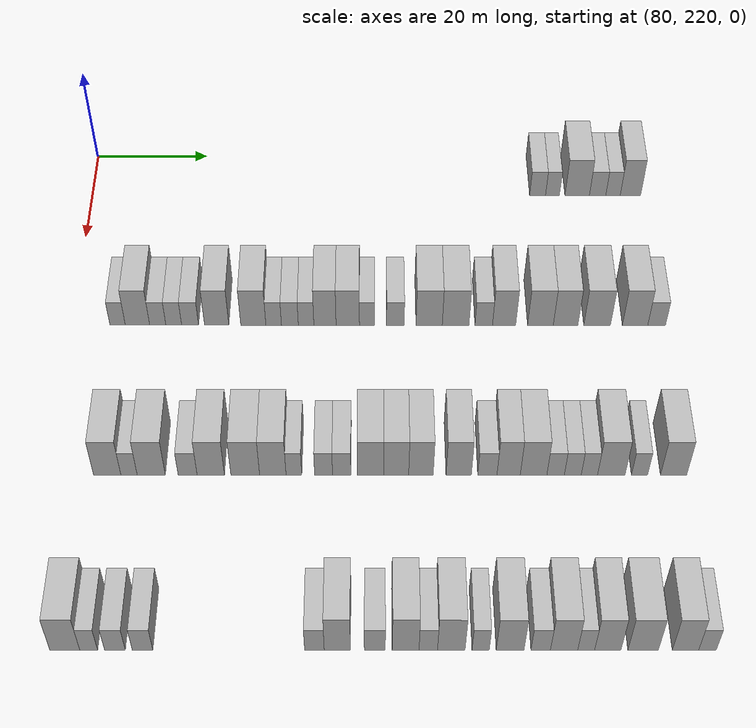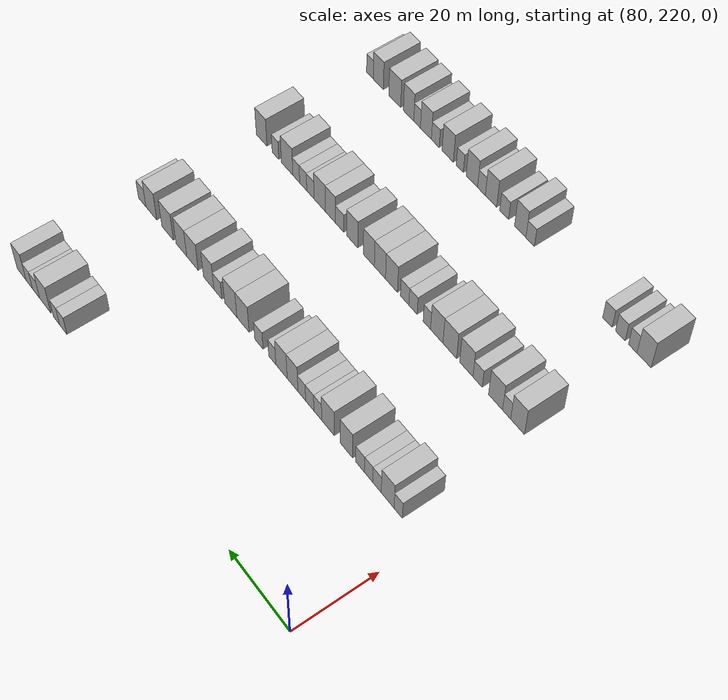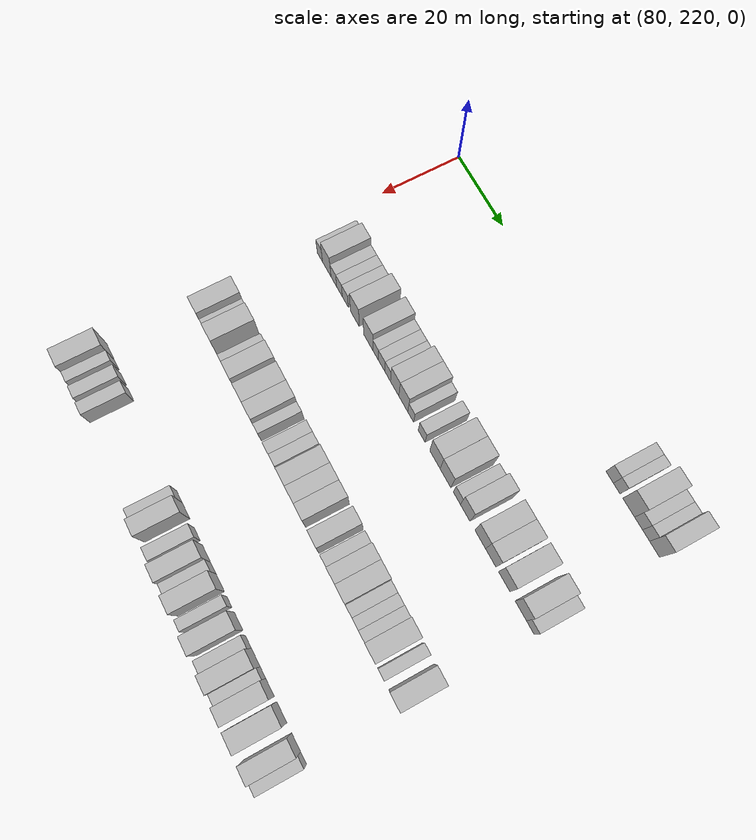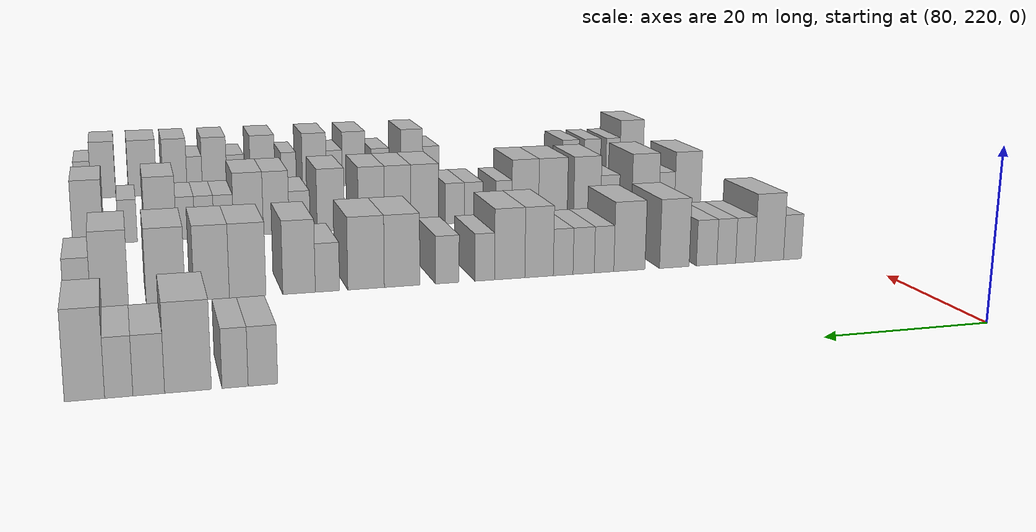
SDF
<sdf version="1.6">
 <world name="default">
  <model name="building_652">
   <static>1</static>
   <pose>85.0000 300.1938 0 0.000000 0.000000 0.000000</pose>
   <link name="link">
    <pose>0 0 3.00 0 0 0</pose>
    <collision name="collision"><geometry><box><size>10.0000 2.8580 6.0000</size></box></geometry></collision>
    <visual name="visual">
     <cast_shadows>0</cast_shadows>
     <geometry><box><size>10.0000 2.8580 6.0000</size></box></geometry>
     <material>
      <script>
       <uri>model://HANNAS_wall/materials/scripts</uri>
       <uri>model://HANNAS_wall/materials/textures</uri>
       <name>vrc/HANNAS_wall</name>
      </script>
     </material>
    </visual>
   </link>
  </model>
  <model name="building_653">
   <static>1</static>
   <pose>85.0000 302.8730 0 0.000000 0.000000 0.000000</pose>
   <link name="link">
    <pose>0 0 3.00 0 0 0</pose>
    <collision name="collision"><geometry><box><size>10.0000 2.5004 6.0000</size></box></geometry></collision>
    <visual name="visual">
     <cast_shadows>0</cast_shadows>
     <geometry><box><size>10.0000 2.5004 6.0000</size></box></geometry>
     <material>
      <script>
       <uri>model://HANNAS_wall/materials/scripts</uri>
       <uri>model://HANNAS_wall/materials/textures</uri>
       <name>vrc/HANNAS_wall</name>
      </script>
     </material>
    </visual>
   </link>
  </model>
  <model name="building_654">
   <static>1</static>
   <pose>85.0000 307.3267 0 0.000000 0.000000 0.000000</pose>
   <link name="link">
    <pose>0 0 4.50 0 0 0</pose>
    <collision name="collision"><geometry><box><size>10.0000 4.4071 9.0000</size></box></geometry></collision>
    <visual name="visual">
     <cast_shadows>0</cast_shadows>
     <geometry><box><size>10.0000 4.4071 9.0000</size></box></geometry>
     <material>
      <script>
       <uri>model://HANNAS_wall/materials/scripts</uri>
       <uri>model://HANNAS_wall/materials/textures</uri>
       <name>vrc/HANNAS_wall</name>
      </script>
     </material>
    </visual>
   </link>
  </model>
  <model name="building_655">
   <static>1</static>
   <pose>85.0000 311.0030 0 0.000000 0.000000 0.000000</pose>
   <link name="link">
    <pose>0 0 3.00 0 0 0</pose>
    <collision name="collision"><geometry><box><size>10.0000 2.9454 6.0000</size></box></geometry></collision>
    <visual name="visual">
     <cast_shadows>0</cast_shadows>
     <geometry><box><size>10.0000 2.9454 6.0000</size></box></geometry>
     <material>
      <script>
       <uri>model://HANNAS_wall/materials/scripts</uri>
       <uri>model://HANNAS_wall/materials/textures</uri>
       <name>vrc/HANNAS_wall</name>
      </script>
     </material>
    </visual>
   </link>
  </model>
  <model name="building_656">
   <static>1</static>
   <pose>85.0000 313.7740 0 0.000000 0.000000 0.000000</pose>
   <link name="link">
    <pose>0 0 3.00 0 0 0</pose>
    <collision name="collision"><geometry><box><size>10.0000 2.5968 6.0000</size></box></geometry></collision>
    <visual name="visual">
     <cast_shadows>0</cast_shadows>
     <geometry><box><size>10.0000 2.5968 6.0000</size></box></geometry>
     <material>
      <script>
       <uri>model://HANNAS_wall/materials/scripts</uri>
       <uri>model://HANNAS_wall/materials/textures</uri>
       <name>vrc/HANNAS_wall</name>
      </script>
     </material>
    </visual>
   </link>
  </model>
  <model name="building_657">
   <static>1</static>
   <pose>85.0000 316.9069 0 0.000000 0.000000 0.000000</pose>
   <link name="link">
    <pose>0 0 4.50 0 0 0</pose>
    <collision name="collision"><geometry><box><size>10.0000 3.6690 9.0000</size></box></geometry></collision>
    <visual name="visual">
     <cast_shadows>0</cast_shadows>
     <geometry><box><size>10.0000 3.6690 9.0000</size></box></geometry>
     <material>
      <script>
       <uri>model://HANNAS_wall/materials/scripts</uri>
       <uri>model://HANNAS_wall/materials/textures</uri>
       <name>vrc/HANNAS_wall</name>
      </script>
     </material>
    </visual>
   </link>
  </model>
  <model name="building_866">
   <static>1</static>
   <pose>115.0000 227.6310 0 0.000000 0.000000 0.000000</pose>
   <link name="link">
    <pose>0 0 3.00 0 0 0</pose>
    <collision name="collision"><geometry><box><size>10.0000 2.5804 6.0000</size></box></geometry></collision>
    <visual name="visual">
     <cast_shadows>0</cast_shadows>
     <geometry><box><size>10.0000 2.5804 6.0000</size></box></geometry>
     <material>
      <script>
       <uri>model://HANNAS_wall/materials/scripts</uri>
       <uri>model://HANNAS_wall/materials/textures</uri>
       <name>vrc/HANNAS_wall</name>
      </script>
     </material>
    </visual>
   </link>
  </model>
  <model name="building_867">
   <static>1</static>
   <pose>115.0000 230.9686 0 0.000000 0.000000 0.000000</pose>
   <link name="link">
    <pose>0 0 4.50 0 0 0</pose>
    <collision name="collision"><geometry><box><size>10.0000 4.0950 9.0000</size></box></geometry></collision>
    <visual name="visual">
     <cast_shadows>0</cast_shadows>
     <geometry><box><size>10.0000 4.0950 9.0000</size></box></geometry>
     <material>
      <script>
       <uri>model://HANNAS_wall/materials/scripts</uri>
       <uri>model://HANNAS_wall/materials/textures</uri>
       <name>vrc/HANNAS_wall</name>
      </script>
     </material>
    </visual>
   </link>
  </model>
  <model name="building_868">
   <static>1</static>
   <pose>115.0000 234.3747 0 0.000000 0.000000 0.000000</pose>
   <link name="link">
    <pose>0 0 3.00 0 0 0</pose>
    <collision name="collision"><geometry><box><size>10.0000 2.7172 6.0000</size></box></geometry></collision>
    <visual name="visual">
     <cast_shadows>0</cast_shadows>
     <geometry><box><size>10.0000 2.7172 6.0000</size></box></geometry>
     <material>
      <script>
       <uri>model://HANNAS_wall/materials/scripts</uri>
       <uri>model://HANNAS_wall/materials/textures</uri>
       <name>vrc/HANNAS_wall</name>
      </script>
     </material>
    </visual>
   </link>
  </model>
  <model name="building_869">
   <static>1</static>
   <pose>115.0000 237.0577 0 0.000000 0.000000 0.000000</pose>
   <link name="link">
    <pose>0 0 3.00 0 0 0</pose>
    <collision name="collision"><geometry><box><size>10.0000 2.6487 6.0000</size></box></geometry></collision>
    <visual name="visual">
     <cast_shadows>0</cast_shadows>
     <geometry><box><size>10.0000 2.6487 6.0000</size></box></geometry>
     <material>
      <script>
       <uri>model://HANNAS_wall/materials/scripts</uri>
       <uri>model://HANNAS_wall/materials/textures</uri>
       <name>vrc/HANNAS_wall</name>
      </script>
     </material>
    </visual>
   </link>
  </model>
  <model name="building_870">
   <static>1</static>
   <pose>115.0000 239.8063 0 0.000000 0.000000 0.000000</pose>
   <link name="link">
    <pose>0 0 3.00 0 0 0</pose>
    <collision name="collision"><geometry><box><size>10.0000 2.8484 6.0000</size></box></geometry></collision>
    <visual name="visual">
     <cast_shadows>0</cast_shadows>
     <geometry><box><size>10.0000 2.8484 6.0000</size></box></geometry>
     <material>
      <script>
       <uri>model://HANNAS_wall/materials/scripts</uri>
       <uri>model://HANNAS_wall/materials/textures</uri>
       <name>vrc/HANNAS_wall</name>
      </script>
     </material>
    </visual>
   </link>
  </model>
  <model name="building_871">
   <static>1</static>
   <pose>115.0000 244.2716 0 0.000000 0.000000 0.000000</pose>
   <link name="link">
    <pose>0 0 4.50 0 0 0</pose>
    <collision name="collision"><geometry><box><size>10.0000 4.0822 9.0000</size></box></geometry></collision>
    <visual name="visual">
     <cast_shadows>0</cast_shadows>
     <geometry><box><size>10.0000 4.0822 9.0000</size></box></geometry>
     <material>
      <script>
       <uri>model://HANNAS_wall/materials/scripts</uri>
       <uri>model://HANNAS_wall/materials/textures</uri>
       <name>vrc/HANNAS_wall</name>
      </script>
     </material>
    </visual>
   </link>
  </model>
  <model name="building_872">
   <static>1</static>
   <pose>115.0000 250.4192 0 0.000000 0.000000 0.000000</pose>
   <link name="link">
    <pose>0 0 4.50 0 0 0</pose>
    <collision name="collision"><geometry><box><size>10.0000 4.2129 9.0000</size></box></geometry></collision>
    <visual name="visual">
     <cast_shadows>0</cast_shadows>
     <geometry><box><size>10.0000 4.2129 9.0000</size></box></geometry>
     <material>
      <script>
       <uri>model://HANNAS_wall/materials/scripts</uri>
       <uri>model://HANNAS_wall/materials/textures</uri>
       <name>vrc/HANNAS_wall</name>
      </script>
     </material>
    </visual>
   </link>
  </model>
  <model name="building_873">
   <static>1</static>
   <pose>115.0000 253.8337 0 0.000000 0.000000 0.000000</pose>
   <link name="link">
    <pose>0 0 3.00 0 0 0</pose>
    <collision name="collision"><geometry><box><size>10.0000 2.6162 6.0000</size></box></geometry></collision>
    <visual name="visual">
     <cast_shadows>0</cast_shadows>
     <geometry><box><size>10.0000 2.6162 6.0000</size></box></geometry>
     <material>
      <script>
       <uri>model://HANNAS_wall/materials/scripts</uri>
       <uri>model://HANNAS_wall/materials/textures</uri>
       <name>vrc/HANNAS_wall</name>
      </script>
     </material>
    </visual>
   </link>
  </model>
  <model name="building_874">
   <static>1</static>
   <pose>115.0000 256.5579 0 0.000000 0.000000 0.000000</pose>
   <link name="link">
    <pose>0 0 3.00 0 0 0</pose>
    <collision name="collision"><geometry><box><size>10.0000 2.8321 6.0000</size></box></geometry></collision>
    <visual name="visual">
     <cast_shadows>0</cast_shadows>
     <geometry><box><size>10.0000 2.8321 6.0000</size></box></geometry>
     <material>
      <script>
       <uri>model://HANNAS_wall/materials/scripts</uri>
       <uri>model://HANNAS_wall/materials/textures</uri>
       <name>vrc/HANNAS_wall</name>
      </script>
     </material>
    </visual>
   </link>
  </model>
  <model name="building_875">
   <static>1</static>
   <pose>115.0000 259.2789 0 0.000000 0.000000 0.000000</pose>
   <link name="link">
    <pose>0 0 3.00 0 0 0</pose>
    <collision name="collision"><geometry><box><size>10.0000 2.6101 6.0000</size></box></geometry></collision>
    <visual name="visual">
     <cast_shadows>0</cast_shadows>
     <geometry><box><size>10.0000 2.6101 6.0000</size></box></geometry>
     <material>
      <script>
       <uri>model://HANNAS_wall/materials/scripts</uri>
       <uri>model://HANNAS_wall/materials/textures</uri>
       <name>vrc/HANNAS_wall</name>
      </script>
     </material>
    </visual>
   </link>
  </model>
  <model name="building_876">
   <static>1</static>
   <pose>115.0000 262.4476 0 0.000000 0.000000 0.000000</pose>
   <link name="link">
    <pose>0 0 4.50 0 0 0</pose>
    <collision name="collision"><geometry><box><size>10.0000 3.7273 9.0000</size></box></geometry></collision>
    <visual name="visual">
     <cast_shadows>0</cast_shadows>
     <geometry><box><size>10.0000 3.7273 9.0000</size></box></geometry>
     <material>
      <script>
       <uri>model://HANNAS_wall/materials/scripts</uri>
       <uri>model://HANNAS_wall/materials/textures</uri>
       <name>vrc/HANNAS_wall</name>
      </script>
     </material>
    </visual>
   </link>
  </model>
  <model name="building_877">
   <static>1</static>
   <pose>115.0000 266.2742 0 0.000000 0.000000 0.000000</pose>
   <link name="link">
    <pose>0 0 4.50 0 0 0</pose>
    <collision name="collision"><geometry><box><size>10.0000 3.9258 9.0000</size></box></geometry></collision>
    <visual name="visual">
     <cast_shadows>0</cast_shadows>
     <geometry><box><size>10.0000 3.9258 9.0000</size></box></geometry>
     <material>
      <script>
       <uri>model://HANNAS_wall/materials/scripts</uri>
       <uri>model://HANNAS_wall/materials/textures</uri>
       <name>vrc/HANNAS_wall</name>
      </script>
     </material>
    </visual>
   </link>
  </model>
  <model name="building_878">
   <static>1</static>
   <pose>115.0000 269.5037 0 0.000000 0.000000 0.000000</pose>
   <link name="link">
    <pose>0 0 3.00 0 0 0</pose>
    <collision name="collision"><geometry><box><size>10.0000 2.5332 6.0000</size></box></geometry></collision>
    <visual name="visual">
     <cast_shadows>0</cast_shadows>
     <geometry><box><size>10.0000 2.5332 6.0000</size></box></geometry>
     <material>
      <script>
       <uri>model://HANNAS_wall/materials/scripts</uri>
       <uri>model://HANNAS_wall/materials/textures</uri>
       <name>vrc/HANNAS_wall</name>
      </script>
     </material>
    </visual>
   </link>
  </model>
  <model name="building_879">
   <static>1</static>
   <pose>115.0000 274.2524 0 0.000000 0.000000 0.000000</pose>
   <link name="link">
    <pose>0 0 3.00 0 0 0</pose>
    <collision name="collision"><geometry><box><size>10.0000 2.9642 6.0000</size></box></geometry></collision>
    <visual name="visual">
     <cast_shadows>0</cast_shadows>
     <geometry><box><size>10.0000 2.9642 6.0000</size></box></geometry>
     <material>
      <script>
       <uri>model://HANNAS_wall/materials/scripts</uri>
       <uri>model://HANNAS_wall/materials/textures</uri>
       <name>vrc/HANNAS_wall</name>
      </script>
     </material>
    </visual>
   </link>
  </model>
  <model name="building_880">
   <static>1</static>
   <pose>115.0000 279.9411 0 0.000000 0.000000 0.000000</pose>
   <link name="link">
    <pose>0 0 4.50 0 0 0</pose>
    <collision name="collision"><geometry><box><size>10.0000 4.4133 9.0000</size></box></geometry></collision>
    <visual name="visual">
     <cast_shadows>0</cast_shadows>
     <geometry><box><size>10.0000 4.4133 9.0000</size></box></geometry>
     <material>
      <script>
       <uri>model://HANNAS_wall/materials/scripts</uri>
       <uri>model://HANNAS_wall/materials/textures</uri>
       <name>vrc/HANNAS_wall</name>
      </script>
     </material>
    </visual>
   </link>
  </model>
  <model name="building_881">
   <static>1</static>
   <pose>115.0000 284.3922 0 0.000000 0.000000 0.000000</pose>
   <link name="link">
    <pose>0 0 4.50 0 0 0</pose>
    <collision name="collision"><geometry><box><size>10.0000 4.4887 9.0000</size></box></geometry></collision>
    <visual name="visual">
     <cast_shadows>0</cast_shadows>
     <geometry><box><size>10.0000 4.4887 9.0000</size></box></geometry>
     <material>
      <script>
       <uri>model://HANNAS_wall/materials/scripts</uri>
       <uri>model://HANNAS_wall/materials/textures</uri>
       <name>vrc/HANNAS_wall</name>
      </script>
     </material>
    </visual>
   </link>
  </model>
  <model name="building_882">
   <static>1</static>
   <pose>115.0000 289.1096 0 0.000000 0.000000 0.000000</pose>
   <link name="link">
    <pose>0 0 3.00 0 0 0</pose>
    <collision name="collision"><geometry><box><size>10.0000 2.9461 6.0000</size></box></geometry></collision>
    <visual name="visual">
     <cast_shadows>0</cast_shadows>
     <geometry><box><size>10.0000 2.9461 6.0000</size></box></geometry>
     <material>
      <script>
       <uri>model://HANNAS_wall/materials/scripts</uri>
       <uri>model://HANNAS_wall/materials/textures</uri>
       <name>vrc/HANNAS_wall</name>
      </script>
     </material>
    </visual>
   </link>
  </model>
  <model name="building_883">
   <static>1</static>
   <pose>115.0000 292.5305 0 0.000000 0.000000 0.000000</pose>
   <link name="link">
    <pose>0 0 4.50 0 0 0</pose>
    <collision name="collision"><geometry><box><size>10.0000 3.8957 9.0000</size></box></geometry></collision>
    <visual name="visual">
     <cast_shadows>0</cast_shadows>
     <geometry><box><size>10.0000 3.8957 9.0000</size></box></geometry>
     <material>
      <script>
       <uri>model://HANNAS_wall/materials/scripts</uri>
       <uri>model://HANNAS_wall/materials/textures</uri>
       <name>vrc/HANNAS_wall</name>
      </script>
     </material>
    </visual>
   </link>
  </model>
  <model name="building_884">
   <static>1</static>
   <pose>115.0000 298.6358 0 0.000000 0.000000 0.000000</pose>
   <link name="link">
    <pose>0 0 4.50 0 0 0</pose>
    <collision name="collision"><geometry><box><size>10.0000 4.3149 9.0000</size></box></geometry></collision>
    <visual name="visual">
     <cast_shadows>0</cast_shadows>
     <geometry><box><size>10.0000 4.3149 9.0000</size></box></geometry>
     <material>
      <script>
       <uri>model://HANNAS_wall/materials/scripts</uri>
       <uri>model://HANNAS_wall/materials/textures</uri>
       <name>vrc/HANNAS_wall</name>
      </script>
     </material>
    </visual>
   </link>
  </model>
  <model name="building_885">
   <static>1</static>
   <pose>115.0000 302.8550 0 0.000000 0.000000 0.000000</pose>
   <link name="link">
    <pose>0 0 4.50 0 0 0</pose>
    <collision name="collision"><geometry><box><size>10.0000 4.1236 9.0000</size></box></geometry></collision>
    <visual name="visual">
     <cast_shadows>0</cast_shadows>
     <geometry><box><size>10.0000 4.1236 9.0000</size></box></geometry>
     <material>
      <script>
       <uri>model://HANNAS_wall/materials/scripts</uri>
       <uri>model://HANNAS_wall/materials/textures</uri>
       <name>vrc/HANNAS_wall</name>
      </script>
     </material>
    </visual>
   </link>
  </model>
  <model name="building_886">
   <static>1</static>
   <pose>115.0000 308.1585 0 0.000000 0.000000 0.000000</pose>
   <link name="link">
    <pose>0 0 4.50 0 0 0</pose>
    <collision name="collision"><geometry><box><size>10.0000 4.4835 9.0000</size></box></geometry></collision>
    <visual name="visual">
     <cast_shadows>0</cast_shadows>
     <geometry><box><size>10.0000 4.4835 9.0000</size></box></geometry>
     <material>
      <script>
       <uri>model://HANNAS_wall/materials/scripts</uri>
       <uri>model://HANNAS_wall/materials/textures</uri>
       <name>vrc/HANNAS_wall</name>
      </script>
     </material>
    </visual>
   </link>
  </model>
  <model name="building_887">
   <static>1</static>
   <pose>115.0000 314.5301 0 0.000000 0.000000 0.000000</pose>
   <link name="link">
    <pose>0 0 4.50 0 0 0</pose>
    <collision name="collision"><geometry><box><size>10.0000 4.2599 9.0000</size></box></geometry></collision>
    <visual name="visual">
     <cast_shadows>0</cast_shadows>
     <geometry><box><size>10.0000 4.2599 9.0000</size></box></geometry>
     <material>
      <script>
       <uri>model://HANNAS_wall/materials/scripts</uri>
       <uri>model://HANNAS_wall/materials/textures</uri>
       <name>vrc/HANNAS_wall</name>
      </script>
     </material>
    </visual>
   </link>
  </model>
  <model name="building_888">
   <static>1</static>
   <pose>115.0000 318.1547 0 0.000000 0.000000 0.000000</pose>
   <link name="link">
    <pose>0 0 3.00 0 0 0</pose>
    <collision name="collision"><geometry><box><size>10.0000 2.9892 6.0000</size></box></geometry></collision>
    <visual name="visual">
     <cast_shadows>0</cast_shadows>
     <geometry><box><size>10.0000 2.9892 6.0000</size></box></geometry>
     <material>
      <script>
       <uri>model://HANNAS_wall/materials/scripts</uri>
       <uri>model://HANNAS_wall/materials/textures</uri>
       <name>vrc/HANNAS_wall</name>
      </script>
     </material>
    </visual>
   </link>
  </model>
  <model name="building_1079">
   <static>1</static>
   <pose>145.0000 229.0703 0 0.000000 0.000000 0.000000</pose>
   <link name="link">
    <pose>0 0 4.50 0 0 0</pose>
    <collision name="collision"><geometry><box><size>10.0000 4.2565 9.0000</size></box></geometry></collision>
    <visual name="visual">
     <cast_shadows>0</cast_shadows>
     <geometry><box><size>10.0000 4.2565 9.0000</size></box></geometry>
     <material>
      <script>
       <uri>model://HANNAS_wall/materials/scripts</uri>
       <uri>model://HANNAS_wall/materials/textures</uri>
       <name>vrc/HANNAS_wall</name>
      </script>
     </material>
    </visual>
   </link>
  </model>
  <model name="building_1080">
   <static>1</static>
   <pose>145.0000 232.4685 0 0.000000 0.000000 0.000000</pose>
   <link name="link">
    <pose>0 0 3.00 0 0 0</pose>
    <collision name="collision"><geometry><box><size>10.0000 2.5397 6.0000</size></box></geometry></collision>
    <visual name="visual">
     <cast_shadows>0</cast_shadows>
     <geometry><box><size>10.0000 2.5397 6.0000</size></box></geometry>
     <material>
      <script>
       <uri>model://HANNAS_wall/materials/scripts</uri>
       <uri>model://HANNAS_wall/materials/textures</uri>
       <name>vrc/HANNAS_wall</name>
      </script>
     </material>
    </visual>
   </link>
  </model>
  <model name="building_1081">
   <static>1</static>
   <pose>145.0000 235.9318 0 0.000000 0.000000 0.000000</pose>
   <link name="link">
    <pose>0 0 4.50 0 0 0</pose>
    <collision name="collision"><geometry><box><size>10.0000 4.3870 9.0000</size></box></geometry></collision>
    <visual name="visual">
     <cast_shadows>0</cast_shadows>
     <geometry><box><size>10.0000 4.3870 9.0000</size></box></geometry>
     <material>
      <script>
       <uri>model://HANNAS_wall/materials/scripts</uri>
       <uri>model://HANNAS_wall/materials/textures</uri>
       <name>vrc/HANNAS_wall</name>
      </script>
     </material>
    </visual>
   </link>
  </model>
  <model name="building_1082">
   <static>1</static>
   <pose>145.0000 241.6033 0 0.000000 0.000000 0.000000</pose>
   <link name="link">
    <pose>0 0 3.00 0 0 0</pose>
    <collision name="collision"><geometry><box><size>10.0000 2.9559 6.0000</size></box></geometry></collision>
    <visual name="visual">
     <cast_shadows>0</cast_shadows>
     <geometry><box><size>10.0000 2.9559 6.0000</size></box></geometry>
     <material>
      <script>
       <uri>model://HANNAS_wall/materials/scripts</uri>
       <uri>model://HANNAS_wall/materials/textures</uri>
       <name>vrc/HANNAS_wall</name>
      </script>
     </material>
    </visual>
   </link>
  </model>
  <model name="building_1083">
   <static>1</static>
   <pose>145.0000 245.2110 0 0.000000 0.000000 0.000000</pose>
   <link name="link">
    <pose>0 0 4.50 0 0 0</pose>
    <collision name="collision"><geometry><box><size>10.0000 4.2596 9.0000</size></box></geometry></collision>
    <visual name="visual">
     <cast_shadows>0</cast_shadows>
     <geometry><box><size>10.0000 4.2596 9.0000</size></box></geometry>
     <material>
      <script>
       <uri>model://HANNAS_wall/materials/scripts</uri>
       <uri>model://HANNAS_wall/materials/textures</uri>
       <name>vrc/HANNAS_wall</name>
      </script>
     </material>
    </visual>
   </link>
  </model>
  <model name="building_1084">
   <static>1</static>
   <pose>145.0000 250.5799 0 0.000000 0.000000 0.000000</pose>
   <link name="link">
    <pose>0 0 4.50 0 0 0</pose>
    <collision name="collision"><geometry><box><size>10.0000 4.4782 9.0000</size></box></geometry></collision>
    <visual name="visual">
     <cast_shadows>0</cast_shadows>
     <geometry><box><size>10.0000 4.4782 9.0000</size></box></geometry>
     <material>
      <script>
       <uri>model://HANNAS_wall/materials/scripts</uri>
       <uri>model://HANNAS_wall/materials/textures</uri>
       <name>vrc/HANNAS_wall</name>
      </script>
     </material>
    </visual>
   </link>
  </model>
  <model name="building_1085">
   <static>1</static>
   <pose>145.0000 254.8781 0 0.000000 0.000000 0.000000</pose>
   <link name="link">
    <pose>0 0 4.50 0 0 0</pose>
    <collision name="collision"><geometry><box><size>10.0000 4.1180 9.0000</size></box></geometry></collision>
    <visual name="visual">
     <cast_shadows>0</cast_shadows>
     <geometry><box><size>10.0000 4.1180 9.0000</size></box></geometry>
     <material>
      <script>
       <uri>model://HANNAS_wall/materials/scripts</uri>
       <uri>model://HANNAS_wall/materials/textures</uri>
       <name>vrc/HANNAS_wall</name>
      </script>
     </material>
    </visual>
   </link>
  </model>
  <model name="building_1086">
   <static>1</static>
   <pose>145.0000 258.1617 0 0.000000 0.000000 0.000000</pose>
   <link name="link">
    <pose>0 0 3.00 0 0 0</pose>
    <collision name="collision"><geometry><box><size>10.0000 2.4492 6.0000</size></box></geometry></collision>
    <visual name="visual">
     <cast_shadows>0</cast_shadows>
     <geometry><box><size>10.0000 2.4492 6.0000</size></box></geometry>
     <material>
      <script>
       <uri>model://HANNAS_wall/materials/scripts</uri>
       <uri>model://HANNAS_wall/materials/textures</uri>
       <name>vrc/HANNAS_wall</name>
      </script>
     </material>
    </visual>
   </link>
  </model>
  <model name="building_1087">
   <static>1</static>
   <pose>145.0000 262.7789 0 0.000000 0.000000 0.000000</pose>
   <link name="link">
    <pose>0 0 3.00 0 0 0</pose>
    <collision name="collision"><geometry><box><size>10.0000 2.7853 6.0000</size></box></geometry></collision>
    <visual name="visual">
     <cast_shadows>0</cast_shadows>
     <geometry><box><size>10.0000 2.7853 6.0000</size></box></geometry>
     <material>
      <script>
       <uri>model://HANNAS_wall/materials/scripts</uri>
       <uri>model://HANNAS_wall/materials/textures</uri>
       <name>vrc/HANNAS_wall</name>
      </script>
     </material>
    </visual>
   </link>
  </model>
  <model name="building_1088">
   <static>1</static>
   <pose>145.0000 265.6045 0 0.000000 0.000000 0.000000</pose>
   <link name="link">
    <pose>0 0 3.00 0 0 0</pose>
    <collision name="collision"><geometry><box><size>10.0000 2.8658 6.0000</size></box></geometry></collision>
    <visual name="visual">
     <cast_shadows>0</cast_shadows>
     <geometry><box><size>10.0000 2.8658 6.0000</size></box></geometry>
     <material>
      <script>
       <uri>model://HANNAS_wall/materials/scripts</uri>
       <uri>model://HANNAS_wall/materials/textures</uri>
       <name>vrc/HANNAS_wall</name>
      </script>
     </material>
    </visual>
   </link>
  </model>
  <model name="building_1089">
   <static>1</static>
   <pose>145.0000 270.0914 0 0.000000 0.000000 0.000000</pose>
   <link name="link">
    <pose>0 0 4.50 0 0 0</pose>
    <collision name="collision"><geometry><box><size>10.0000 4.1080 9.0000</size></box></geometry></collision>
    <visual name="visual">
     <cast_shadows>0</cast_shadows>
     <geometry><box><size>10.0000 4.1080 9.0000</size></box></geometry>
     <material>
      <script>
       <uri>model://HANNAS_wall/materials/scripts</uri>
       <uri>model://HANNAS_wall/materials/textures</uri>
       <name>vrc/HANNAS_wall</name>
      </script>
     </material>
    </visual>
   </link>
  </model>
  <model name="building_1090">
   <static>1</static>
   <pose>145.0000 274.0895 0 0.000000 0.000000 0.000000</pose>
   <link name="link">
    <pose>0 0 4.50 0 0 0</pose>
    <collision name="collision"><geometry><box><size>10.0000 3.8882 9.0000</size></box></geometry></collision>
    <visual name="visual">
     <cast_shadows>0</cast_shadows>
     <geometry><box><size>10.0000 3.8882 9.0000</size></box></geometry>
     <material>
      <script>
       <uri>model://HANNAS_wall/materials/scripts</uri>
       <uri>model://HANNAS_wall/materials/textures</uri>
       <name>vrc/HANNAS_wall</name>
      </script>
     </material>
    </visual>
   </link>
  </model>
  <model name="building_1091">
   <static>1</static>
   <pose>145.0000 277.9465 0 0.000000 0.000000 0.000000</pose>
   <link name="link">
    <pose>0 0 4.50 0 0 0</pose>
    <collision name="collision"><geometry><box><size>10.0000 3.8258 9.0000</size></box></geometry></collision>
    <visual name="visual">
     <cast_shadows>0</cast_shadows>
     <geometry><box><size>10.0000 3.8258 9.0000</size></box></geometry>
     <material>
      <script>
       <uri>model://HANNAS_wall/materials/scripts</uri>
       <uri>model://HANNAS_wall/materials/textures</uri>
       <name>vrc/HANNAS_wall</name>
      </script>
     </material>
    </visual>
   </link>
  </model>
  <model name="building_1092">
   <static>1</static>
   <pose>145.0000 283.8302 0 0.000000 0.000000 0.000000</pose>
   <link name="link">
    <pose>0 0 4.50 0 0 0</pose>
    <collision name="collision"><geometry><box><size>10.0000 3.9417 9.0000</size></box></geometry></collision>
    <visual name="visual">
     <cast_shadows>0</cast_shadows>
     <geometry><box><size>10.0000 3.9417 9.0000</size></box></geometry>
     <material>
      <script>
       <uri>model://HANNAS_wall/materials/scripts</uri>
       <uri>model://HANNAS_wall/materials/textures</uri>
       <name>vrc/HANNAS_wall</name>
      </script>
     </material>
    </visual>
   </link>
  </model>
  <model name="building_1093">
   <static>1</static>
   <pose>145.0000 288.2941 0 0.000000 0.000000 0.000000</pose>
   <link name="link">
    <pose>0 0 3.00 0 0 0</pose>
    <collision name="collision"><geometry><box><size>10.0000 2.9861 6.0000</size></box></geometry></collision>
    <visual name="visual">
     <cast_shadows>0</cast_shadows>
     <geometry><box><size>10.0000 2.9861 6.0000</size></box></geometry>
     <material>
      <script>
       <uri>model://HANNAS_wall/materials/scripts</uri>
       <uri>model://HANNAS_wall/materials/textures</uri>
       <name>vrc/HANNAS_wall</name>
      </script>
     </material>
    </visual>
   </link>
  </model>
  <model name="building_1094">
   <static>1</static>
   <pose>145.0000 291.6031 0 0.000000 0.000000 0.000000</pose>
   <link name="link">
    <pose>0 0 4.50 0 0 0</pose>
    <collision name="collision"><geometry><box><size>10.0000 3.6319 9.0000</size></box></geometry></collision>
    <visual name="visual">
     <cast_shadows>0</cast_shadows>
     <geometry><box><size>10.0000 3.6319 9.0000</size></box></geometry>
     <material>
      <script>
       <uri>model://HANNAS_wall/materials/scripts</uri>
       <uri>model://HANNAS_wall/materials/textures</uri>
       <name>vrc/HANNAS_wall</name>
      </script>
     </material>
    </visual>
   </link>
  </model>
  <model name="building_1095">
   <static>1</static>
   <pose>145.0000 295.4934 0 0.000000 0.000000 0.000000</pose>
   <link name="link">
    <pose>0 0 4.50 0 0 0</pose>
    <collision name="collision"><geometry><box><size>10.0000 4.1486 9.0000</size></box></geometry></collision>
    <visual name="visual">
     <cast_shadows>0</cast_shadows>
     <geometry><box><size>10.0000 4.1486 9.0000</size></box></geometry>
     <material>
      <script>
       <uri>model://HANNAS_wall/materials/scripts</uri>
       <uri>model://HANNAS_wall/materials/textures</uri>
       <name>vrc/HANNAS_wall</name>
      </script>
     </material>
    </visual>
   </link>
  </model>
  <model name="building_1096">
   <static>1</static>
   <pose>145.0000 298.9297 0 0.000000 0.000000 0.000000</pose>
   <link name="link">
    <pose>0 0 3.00 0 0 0</pose>
    <collision name="collision"><geometry><box><size>10.0000 2.7241 6.0000</size></box></geometry></collision>
    <visual name="visual">
     <cast_shadows>0</cast_shadows>
     <geometry><box><size>10.0000 2.7241 6.0000</size></box></geometry>
     <material>
      <script>
       <uri>model://HANNAS_wall/materials/scripts</uri>
       <uri>model://HANNAS_wall/materials/textures</uri>
       <name>vrc/HANNAS_wall</name>
      </script>
     </material>
    </visual>
   </link>
  </model>
  <model name="building_1097">
   <static>1</static>
   <pose>145.0000 301.6072 0 0.000000 0.000000 0.000000</pose>
   <link name="link">
    <pose>0 0 3.00 0 0 0</pose>
    <collision name="collision"><geometry><box><size>10.0000 2.6309 6.0000</size></box></geometry></collision>
    <visual name="visual">
     <cast_shadows>0</cast_shadows>
     <geometry><box><size>10.0000 2.6309 6.0000</size></box></geometry>
     <material>
      <script>
       <uri>model://HANNAS_wall/materials/scripts</uri>
       <uri>model://HANNAS_wall/materials/textures</uri>
       <name>vrc/HANNAS_wall</name>
      </script>
     </material>
    </visual>
   </link>
  </model>
  <model name="building_1098">
   <static>1</static>
   <pose>145.0000 304.1902 0 0.000000 0.000000 0.000000</pose>
   <link name="link">
    <pose>0 0 3.00 0 0 0</pose>
    <collision name="collision"><geometry><box><size>10.0000 2.5352 6.0000</size></box></geometry></collision>
    <visual name="visual">
     <cast_shadows>0</cast_shadows>
     <geometry><box><size>10.0000 2.5352 6.0000</size></box></geometry>
     <material>
      <script>
       <uri>model://HANNAS_wall/materials/scripts</uri>
       <uri>model://HANNAS_wall/materials/textures</uri>
       <name>vrc/HANNAS_wall</name>
      </script>
     </material>
    </visual>
   </link>
  </model>
  <model name="building_1099">
   <static>1</static>
   <pose>145.0000 307.5999 0 0.000000 0.000000 0.000000</pose>
   <link name="link">
    <pose>0 0 4.50 0 0 0</pose>
    <collision name="collision"><geometry><box><size>10.0000 4.2842 9.0000</size></box></geometry></collision>
    <visual name="visual">
     <cast_shadows>0</cast_shadows>
     <geometry><box><size>10.0000 4.2842 9.0000</size></box></geometry>
     <material>
      <script>
       <uri>model://HANNAS_wall/materials/scripts</uri>
       <uri>model://HANNAS_wall/materials/textures</uri>
       <name>vrc/HANNAS_wall</name>
      </script>
     </material>
    </visual>
   </link>
  </model>
  <model name="building_1100">
   <static>1</static>
   <pose>145.0000 312.0033 0 0.000000 0.000000 0.000000</pose>
   <link name="link">
    <pose>0 0 3.00 0 0 0</pose>
    <collision name="collision"><geometry><box><size>10.0000 2.5224 6.0000</size></box></geometry></collision>
    <visual name="visual">
     <cast_shadows>0</cast_shadows>
     <geometry><box><size>10.0000 2.5224 6.0000</size></box></geometry>
     <material>
      <script>
       <uri>model://HANNAS_wall/materials/scripts</uri>
       <uri>model://HANNAS_wall/materials/textures</uri>
       <name>vrc/HANNAS_wall</name>
      </script>
     </material>
    </visual>
   </link>
  </model>
  <model name="building_1101">
   <static>1</static>
   <pose>145.0000 317.3088 0 0.000000 0.000000 0.000000</pose>
   <link name="link">
    <pose>0 0 4.50 0 0 0</pose>
    <collision name="collision"><geometry><box><size>10.0000 4.0887 9.0000</size></box></geometry></collision>
    <visual name="visual">
     <cast_shadows>0</cast_shadows>
     <geometry><box><size>10.0000 4.0887 9.0000</size></box></geometry>
     <material>
      <script>
       <uri>model://HANNAS_wall/materials/scripts</uri>
       <uri>model://HANNAS_wall/materials/textures</uri>
       <name>vrc/HANNAS_wall</name>
      </script>
     </material>
    </visual>
   </link>
  </model>
  <model name="building_1302">
   <static>1</static>
   <pose>175.0000 226.1689 0 0.000000 0.000000 0.000000</pose>
   <link name="link">
    <pose>0 0 4.50 0 0 0</pose>
    <collision name="collision"><geometry><box><size>10.0000 4.3009 9.0000</size></box></geometry></collision>
    <visual name="visual">
     <cast_shadows>0</cast_shadows>
     <geometry><box><size>10.0000 4.3009 9.0000</size></box></geometry>
     <material>
      <script>
       <uri>model://HANNAS_wall/materials/scripts</uri>
       <uri>model://HANNAS_wall/materials/textures</uri>
       <name>vrc/HANNAS_wall</name>
      </script>
     </material>
    </visual>
   </link>
  </model>
  <model name="building_1303">
   <static>1</static>
   <pose>175.0000 229.6033 0 0.000000 0.000000 0.000000</pose>
   <link name="link">
    <pose>0 0 3.00 0 0 0</pose>
    <collision name="collision"><geometry><box><size>10.0000 2.5679 6.0000</size></box></geometry></collision>
    <visual name="visual">
     <cast_shadows>0</cast_shadows>
     <geometry><box><size>10.0000 2.5679 6.0000</size></box></geometry>
     <material>
      <script>
       <uri>model://HANNAS_wall/materials/scripts</uri>
       <uri>model://HANNAS_wall/materials/textures</uri>
       <name>vrc/HANNAS_wall</name>
      </script>
     </material>
    </visual>
   </link>
  </model>
  <model name="building_1304">
   <static>1</static>
   <pose>175.0000 233.3742 0 0.000000 0.000000 0.000000</pose>
   <link name="link">
    <pose>0 0 3.00 0 0 0</pose>
    <collision name="collision"><geometry><box><size>10.0000 2.9740 6.0000</size></box></geometry></collision>
    <visual name="visual">
     <cast_shadows>0</cast_shadows>
     <geometry><box><size>10.0000 2.9740 6.0000</size></box></geometry>
     <material>
      <script>
       <uri>model://HANNAS_wall/materials/scripts</uri>
       <uri>model://HANNAS_wall/materials/textures</uri>
       <name>vrc/HANNAS_wall</name>
      </script>
     </material>
    </visual>
   </link>
  </model>
  <model name="building_1305">
   <static>1</static>
   <pose>175.0000 237.3392 0 0.000000 0.000000 0.000000</pose>
   <link name="link">
    <pose>0 0 3.00 0 0 0</pose>
    <collision name="collision"><geometry><box><size>10.0000 2.9560 6.0000</size></box></geometry></collision>
    <visual name="visual">
     <cast_shadows>0</cast_shadows>
     <geometry><box><size>10.0000 2.9560 6.0000</size></box></geometry>
     <material>
      <script>
       <uri>model://HANNAS_wall/materials/scripts</uri>
       <uri>model://HANNAS_wall/materials/textures</uri>
       <name>vrc/HANNAS_wall</name>
      </script>
     </material>
    </visual>
   </link>
  </model>
  <model name="building_1306">
   <static>1</static>
   <pose>175.0000 262.0277 0 0.000000 0.000000 0.000000</pose>
   <link name="link">
    <pose>0 0 3.00 0 0 0</pose>
    <collision name="collision"><geometry><box><size>10.0000 2.8070 6.0000</size></box></geometry></collision>
    <visual name="visual">
     <cast_shadows>0</cast_shadows>
     <geometry><box><size>10.0000 2.8070 6.0000</size></box></geometry>
     <material>
      <script>
       <uri>model://HANNAS_wall/materials/scripts</uri>
       <uri>model://HANNAS_wall/materials/textures</uri>
       <name>vrc/HANNAS_wall</name>
      </script>
     </material>
    </visual>
   </link>
  </model>
  <model name="building_1307">
   <static>1</static>
   <pose>175.0000 265.3158 0 0.000000 0.000000 0.000000</pose>
   <link name="link">
    <pose>0 0 4.50 0 0 0</pose>
    <collision name="collision"><geometry><box><size>10.0000 3.7692 9.0000</size></box></geometry></collision>
    <visual name="visual">
     <cast_shadows>0</cast_shadows>
     <geometry><box><size>10.0000 3.7692 9.0000</size></box></geometry>
     <material>
      <script>
       <uri>model://HANNAS_wall/materials/scripts</uri>
       <uri>model://HANNAS_wall/materials/textures</uri>
       <name>vrc/HANNAS_wall</name>
      </script>
     </material>
    </visual>
   </link>
  </model>
  <model name="building_1308">
   <static>1</static>
   <pose>175.0000 270.6983 0 0.000000 0.000000 0.000000</pose>
   <link name="link">
    <pose>0 0 3.00 0 0 0</pose>
    <collision name="collision"><geometry><box><size>10.0000 2.9958 6.0000</size></box></geometry></collision>
    <visual name="visual">
     <cast_shadows>0</cast_shadows>
     <geometry><box><size>10.0000 2.9958 6.0000</size></box></geometry>
     <material>
      <script>
       <uri>model://HANNAS_wall/materials/scripts</uri>
       <uri>model://HANNAS_wall/materials/textures</uri>
       <name>vrc/HANNAS_wall</name>
      </script>
     </material>
    </visual>
   </link>
  </model>
  <model name="building_1309">
   <static>1</static>
   <pose>175.0000 275.1216 0 0.000000 0.000000 0.000000</pose>
   <link name="link">
    <pose>0 0 4.50 0 0 0</pose>
    <collision name="collision"><geometry><box><size>10.0000 3.8508 9.0000</size></box></geometry></collision>
    <visual name="visual">
     <cast_shadows>0</cast_shadows>
     <geometry><box><size>10.0000 3.8508 9.0000</size></box></geometry>
     <material>
      <script>
       <uri>model://HANNAS_wall/materials/scripts</uri>
       <uri>model://HANNAS_wall/materials/textures</uri>
       <name>vrc/HANNAS_wall</name>
      </script>
     </material>
    </visual>
   </link>
  </model>
  <model name="building_1310">
   <static>1</static>
   <pose>175.0000 278.3768 0 0.000000 0.000000 0.000000</pose>
   <link name="link">
    <pose>0 0 3.00 0 0 0</pose>
    <collision name="collision"><geometry><box><size>10.0000 2.6596 6.0000</size></box></geometry></collision>
    <visual name="visual">
     <cast_shadows>0</cast_shadows>
     <geometry><box><size>10.0000 2.6596 6.0000</size></box></geometry>
     <material>
      <script>
       <uri>model://HANNAS_wall/materials/scripts</uri>
       <uri>model://HANNAS_wall/materials/textures</uri>
       <name>vrc/HANNAS_wall</name>
      </script>
     </material>
    </visual>
   </link>
  </model>
  <model name="building_1311">
   <static>1</static>
   <pose>175.0000 281.6850 0 0.000000 0.000000 0.000000</pose>
   <link name="link">
    <pose>0 0 4.50 0 0 0</pose>
    <collision name="collision"><geometry><box><size>10.0000 3.9570 9.0000</size></box></geometry></collision>
    <visual name="visual">
     <cast_shadows>0</cast_shadows>
     <geometry><box><size>10.0000 3.9570 9.0000</size></box></geometry>
     <material>
      <script>
       <uri>model://HANNAS_wall/materials/scripts</uri>
       <uri>model://HANNAS_wall/materials/textures</uri>
       <name>vrc/HANNAS_wall</name>
      </script>
     </material>
    </visual>
   </link>
  </model>
  <model name="building_1312">
   <static>1</static>
   <pose>175.0000 285.9002 0 0.000000 0.000000 0.000000</pose>
   <link name="link">
    <pose>0 0 3.00 0 0 0</pose>
    <collision name="collision"><geometry><box><size>10.0000 2.4735 6.0000</size></box></geometry></collision>
    <visual name="visual">
     <cast_shadows>0</cast_shadows>
     <geometry><box><size>10.0000 2.4735 6.0000</size></box></geometry>
     <material>
      <script>
       <uri>model://HANNAS_wall/materials/scripts</uri>
       <uri>model://HANNAS_wall/materials/textures</uri>
       <name>vrc/HANNAS_wall</name>
      </script>
     </material>
    </visual>
   </link>
  </model>
  <model name="building_1313">
   <static>1</static>
   <pose>175.0000 290.1329 0 0.000000 0.000000 0.000000</pose>
   <link name="link">
    <pose>0 0 4.50 0 0 0</pose>
    <collision name="collision"><geometry><box><size>10.0000 3.9918 9.0000</size></box></geometry></collision>
    <visual name="visual">
     <cast_shadows>0</cast_shadows>
     <geometry><box><size>10.0000 3.9918 9.0000</size></box></geometry>
     <material>
      <script>
       <uri>model://HANNAS_wall/materials/scripts</uri>
       <uri>model://HANNAS_wall/materials/textures</uri>
       <name>vrc/HANNAS_wall</name>
      </script>
     </material>
    </visual>
   </link>
  </model>
  <model name="building_1314">
   <static>1</static>
   <pose>175.0000 294.5279 0 0.000000 0.000000 0.000000</pose>
   <link name="link">
    <pose>0 0 3.00 0 0 0</pose>
    <collision name="collision"><geometry><box><size>10.0000 2.7982 6.0000</size></box></geometry></collision>
    <visual name="visual">
     <cast_shadows>0</cast_shadows>
     <geometry><box><size>10.0000 2.7982 6.0000</size></box></geometry>
     <material>
      <script>
       <uri>model://HANNAS_wall/materials/scripts</uri>
       <uri>model://HANNAS_wall/materials/textures</uri>
       <name>vrc/HANNAS_wall</name>
      </script>
     </material>
    </visual>
   </link>
  </model>
  <model name="building_1315">
   <static>1</static>
   <pose>175.0000 297.8874 0 0.000000 0.000000 0.000000</pose>
   <link name="link">
    <pose>0 0 4.50 0 0 0</pose>
    <collision name="collision"><geometry><box><size>10.0000 3.9208 9.0000</size></box></geometry></collision>
    <visual name="visual">
     <cast_shadows>0</cast_shadows>
     <geometry><box><size>10.0000 3.9208 9.0000</size></box></geometry>
     <material>
      <script>
       <uri>model://HANNAS_wall/materials/scripts</uri>
       <uri>model://HANNAS_wall/materials/textures</uri>
       <name>vrc/HANNAS_wall</name>
      </script>
     </material>
    </visual>
   </link>
  </model>
  <model name="building_1316">
   <static>1</static>
   <pose>175.0000 301.0592 0 0.000000 0.000000 0.000000</pose>
   <link name="link">
    <pose>0 0 3.00 0 0 0</pose>
    <collision name="collision"><geometry><box><size>10.0000 2.4229 6.0000</size></box></geometry></collision>
    <visual name="visual">
     <cast_shadows>0</cast_shadows>
     <geometry><box><size>10.0000 2.4229 6.0000</size></box></geometry>
     <material>
      <script>
       <uri>model://HANNAS_wall/materials/scripts</uri>
       <uri>model://HANNAS_wall/materials/textures</uri>
       <name>vrc/HANNAS_wall</name>
      </script>
     </material>
    </visual>
   </link>
  </model>
  <model name="building_1317">
   <static>1</static>
   <pose>175.0000 304.1608 0 0.000000 0.000000 0.000000</pose>
   <link name="link">
    <pose>0 0 4.50 0 0 0</pose>
    <collision name="collision"><geometry><box><size>10.0000 3.7804 9.0000</size></box></geometry></collision>
    <visual name="visual">
     <cast_shadows>0</cast_shadows>
     <geometry><box><size>10.0000 3.7804 9.0000</size></box></geometry>
     <material>
      <script>
       <uri>model://HANNAS_wall/materials/scripts</uri>
       <uri>model://HANNAS_wall/materials/textures</uri>
       <name>vrc/HANNAS_wall</name>
      </script>
     </material>
    </visual>
   </link>
  </model>
  <model name="building_1318">
   <static>1</static>
   <pose>175.0000 309.2421 0 0.000000 0.000000 0.000000</pose>
   <link name="link">
    <pose>0 0 4.50 0 0 0</pose>
    <collision name="collision"><geometry><box><size>10.0000 4.3821 9.0000</size></box></geometry></collision>
    <visual name="visual">
     <cast_shadows>0</cast_shadows>
     <geometry><box><size>10.0000 4.3821 9.0000</size></box></geometry>
     <material>
      <script>
       <uri>model://HANNAS_wall/materials/scripts</uri>
       <uri>model://HANNAS_wall/materials/textures</uri>
       <name>vrc/HANNAS_wall</name>
      </script>
     </material>
    </visual>
   </link>
  </model>
  <model name="building_1319">
   <static>1</static>
   <pose>175.0000 315.3266 0 0.000000 0.000000 0.000000</pose>
   <link name="link">
    <pose>0 0 4.50 0 0 0</pose>
    <collision name="collision"><geometry><box><size>10.0000 3.7870 9.0000</size></box></geometry></collision>
    <visual name="visual">
     <cast_shadows>0</cast_shadows>
     <geometry><box><size>10.0000 3.7870 9.0000</size></box></geometry>
     <material>
      <script>
       <uri>model://HANNAS_wall/materials/scripts</uri>
       <uri>model://HANNAS_wall/materials/textures</uri>
       <name>vrc/HANNAS_wall</name>
      </script>
     </material>
    </visual>
   </link>
  </model>
  <model name="building_1320">
   <static>1</static>
   <pose>175.0000 318.4854 0 0.000000 0.000000 0.000000</pose>
   <link name="link">
    <pose>0 0 3.00 0 0 0</pose>
    <collision name="collision"><geometry><box><size>10.0000 2.5306 6.0000</size></box></geometry></collision>
    <visual name="visual">
     <cast_shadows>0</cast_shadows>
     <geometry><box><size>10.0000 2.5306 6.0000</size></box></geometry>
     <material>
      <script>
       <uri>model://HANNAS_wall/materials/scripts</uri>
       <uri>model://HANNAS_wall/materials/textures</uri>
       <name>vrc/HANNAS_wall</name>
      </script>
     </material>
    </visual>
   </link>
  </model>
 </world>
</sdf>
